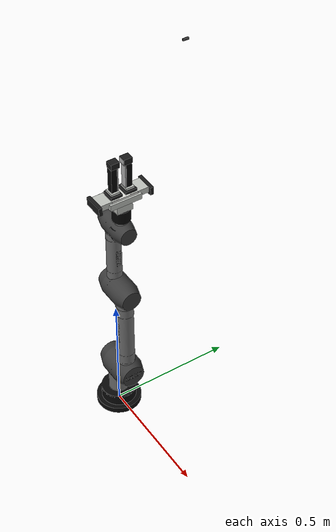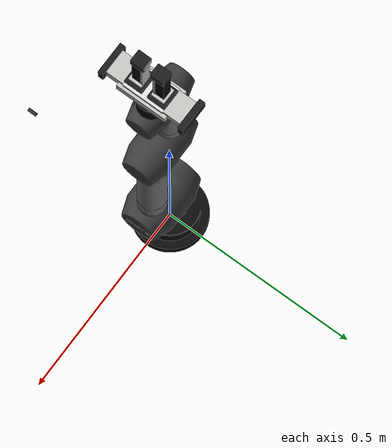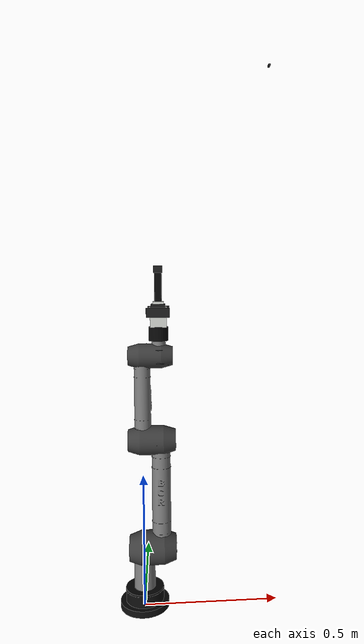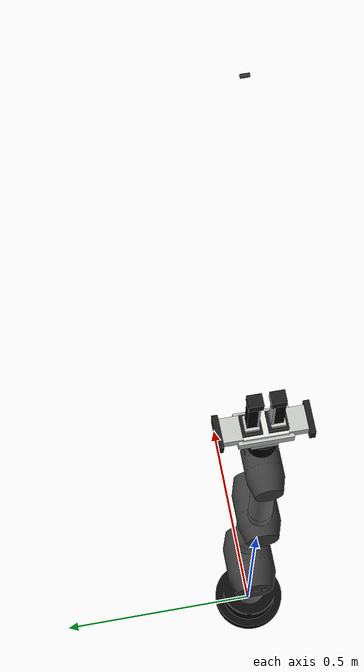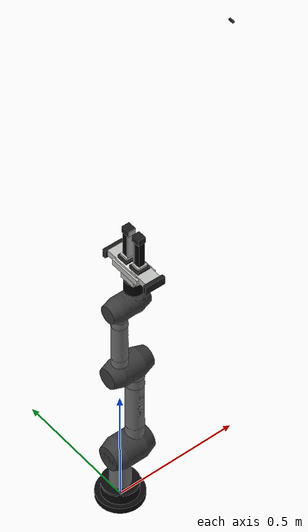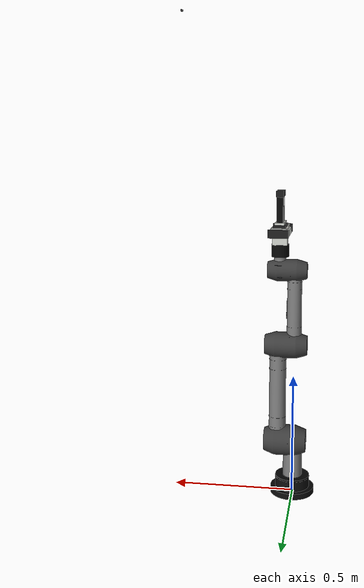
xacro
<?xml version="1.0"?>
<robot xmlns:xacro="http://www.ros.org/wiki/xacro" name="bcr_arm">

  <!-- ================= Arguments ================= -->
  <xacro:arg name="use_gazebo" default="true"/>
  <xacro:arg name="ros2_controllers_path" default="bcr_arm_moveit_config/config/bcr_arm/ros2_controllers.yaml"/>
  <xacro:arg name="use_camera" default="true"/>
  <xacro:arg name="use_gripper" default="true"/>
  <xacro:arg name="prefix" default=""/>

  <!-- ================= Includes ================= -->
  <xacro:include filename="$(find bcr_arm_description)/urdf/mech/bcr_arm_mech.urdf.xacro"/>
  <xacro:include filename="$(find bcr_arm_description)/urdf/sensors/depth_camera.urdf.xacro"/>
  <xacro:include filename="$(find bcr_arm_description)/urdf/control/gazebo_sim_ros2_control.urdf.xacro"/>
  <xacro:include filename="$(find bcr_arm_description)/urdf/control/ros2_control.urdf.xacro"/>
  <xacro:include filename="$(find bcr_arm_description)/urdf/end_effectors/simple_parallel_gripper.urdf.xacro"/>
  <!-- ================= Materials ================= -->
  <material name="black">
    <color rgba="0.165 0.165 0.165 1.0"/>
  </material>

  <material name="dark_grey">
    <color rgba="0.376 0.376 0.376 1.0"/>
  </material>

  <material name="grey">
    <color rgba="0.565 0.565 0.565 1.0"/>
  </material>

  <!-- ================= World Frame ================= -->
  <link name="world"/>

  <joint name="world_to_base" type="fixed">
    <parent link="world"/>
    <child link="base_link"/>
    <origin xyz="0 0 0" rpy="0 0 0"/>
  </joint>

  <!-- ================= Mechanical Arm ================= -->
  <xacro:bcr_arm_kinematics/>

  <!-- ================= End Effector ================= -->

  <xacro:simple_parallel_gripper
    prefix="$(arg prefix)"
    parent_link="flange"
    xyz="0 0 0.055"
    rpy="0 0 0"/>

  <!-- ================= Sensors ================= -->
  <xacro:if value="$(arg use_camera)">
    <xacro:depth_camera
      prefix="$(arg prefix)"
      parent_link="world"
      mount_xyz="0.45 0.00 1.95"
      mount_rpy="0 1.6 0"/>
  </xacro:if>

  <!-- ================= ROS2 Control ================= -->
  <xacro:if value="$(arg use_gazebo)">
    <xacro:load_gazebo_sim_ros2_control_plugin
      robot_name="bcr_arm"
      ros2_controllers_path="$(arg ros2_controllers_path)"
      use_gazebo="$(arg use_gazebo)"/>

    <xacro:ros2_control_interfaces/>
  </xacro:if>

</robot>

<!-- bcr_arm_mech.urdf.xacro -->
<!-- Import Python's math module for use in expressions -->
<?python import math ?>
<robot xmlns:xacro="http://www.ros.org/wiki/xacro">

  <xacro:property name="l1_len" value="0.200" />
  <xacro:property name="l2_offset" value="0.065" />
  <xacro:property name="l3_len" value="0.410" />
  <xacro:property name="l4_offset" value="-0.065" />
  <xacro:property name="l5_len" value="0.310" />
  <xacro:property name="l6_offset" value="0.060" />
  <xacro:property name="l7_len" value="0.105" />

  <!-- RViz Material Definitions -->
  <material name="color_black">
    <color rgba="0.165 0.165 0.165 1"/>
  </material>
  <material name="color_dark_grey">
    <color rgba="0.376 0.376 0.376 1"/>
  </material>
  <material name="color_grey">
    <color rgba="0.565 0.565 0.565 1"/>
  </material>
  <material name="color_light_grey">
    <color rgba="0.690 0.690 0.690 1"/>
  </material>
  <material name="color_white">
    <color rgba="0.961 0.961 0.961 1"/>
  </material>

  <xacro:macro name="bcr_arm_kinematics">

    <!-- Ignition Gazebo Material Definitions -->
    <gazebo reference="base_link">
      <material>
        <ambient>0.165 0.165 0.165 1</ambient>
        <diffuse>0.165 0.165 0.165 1</diffuse>
        <specular>0.1 0.1 0.1 1</specular>
        <emissive>0 0 0 0</emissive>
      </material>
      <mu1>0.8</mu1>
      <mu2>0.8</mu2>
    </gazebo>

    <gazebo reference="link1">
      <material>
        <ambient>0.565 0.565 0.565 1</ambient>
        <diffuse>0.565 0.565 0.565 1</diffuse>
        <specular>0.2 0.2 0.2 1</specular>
        <emissive>0 0 0 0</emissive>
      </material>
      <mu1>0.8</mu1>
      <mu2>0.8</mu2>
    </gazebo>

    <gazebo reference="link2">
      <material>
        <ambient>0.961 0.961 0.961 1</ambient>
        <diffuse>0.961 0.961 0.961 1</diffuse>
        <specular>0.3 0.3 0.3 1</specular>
        <emissive>0 0 0 0</emissive>
      </material>
      <mu1>0.8</mu1>
      <mu2>0.8</mu2>
    </gazebo>

    <gazebo reference="link3">
      <material>
        <ambient>0.565 0.565 0.565 1</ambient>
        <diffuse>0.565 0.565 0.565 1</diffuse>
        <specular>0.2 0.2 0.2 1</specular>
        <emissive>0 0 0 0</emissive>
      </material>
      <mu1>0.8</mu1>
      <mu2>0.8</mu2>
    </gazebo>

    <gazebo reference="link4">
      <material>
        <ambient>0.961 0.961 0.961 1</ambient>
        <diffuse>0.961 0.961 0.961 1</diffuse>
        <specular>0.3 0.3 0.3 1</specular>
        <emissive>0 0 0 0</emissive>
      </material>
      <mu1>0.8</mu1>
      <mu2>0.8</mu2>
    </gazebo>

    <gazebo reference="link5">
      <material>
        <ambient>0.565 0.565 0.565 1</ambient>
        <diffuse>0.565 0.565 0.565 1</diffuse>
        <specular>0.2 0.2 0.2 1</specular>
        <emissive>0 0 0 0</emissive>
      </material>
      <mu1>0.8</mu1>
      <mu2>0.8</mu2>
    </gazebo>

    <gazebo reference="link6">
      <material>
        <ambient>0.961 0.961 0.961 1</ambient>
        <diffuse>0.961 0.961 0.961 1</diffuse>
        <specular>0.3 0.3 0.3 1</specular>
        <emissive>0 0 0 0</emissive>
      </material>
      <mu1>0.8</mu1>
      <mu2>0.8</mu2>
    </gazebo>

    <gazebo reference="flange">
      <material>
        <ambient>0.376 0.376 0.376 1</ambient>
        <diffuse>0.376 0.376 0.376 1</diffuse>
        <specular>0.15 0.15 0.15 1</specular>
        <emissive>0 0 0 0</emissive>
      </material>
      <mu1>0.8</mu1>
      <mu2>0.8</mu2>
    </gazebo>

    <!-- Kinematic Chain -->
    <link name="base_link">
      <visual>
        <geometry>
          <mesh filename="package://bcr_arm_description/meshes/base_joint.dae" scale="0.001 0.001 0.001"/>
        </geometry>
      </visual>
      <collision>
        <origin xyz="0 0 0.050" rpy="0 0 0"/>
        <geometry>
          <cylinder radius="0.070" length="0.050"/>
        </geometry>
      </collision>
      <inertial>
        <mass value="2.0"/>
        <inertia ixx="0.01" ixy="0" ixz="0" iyy="0.01" iyz="0" izz="0.01"/>
      </inertial>
    </link>

    <joint name="joint1" type="revolute">
      <parent link="base_link"/>
      <child link="link1"/>
      <origin xyz="0 0 0.025" rpy="0 0 0"/>
      <axis xyz="0 0 1"/>
      <limit lower="-6.28" upper="6.28" effort="100" velocity="2"/>
    </joint>
    <link name="link1">
      <visual>
        <origin xyz="0 0 0" rpy="0 0 0"/>
        <geometry>
          <mesh filename="package://bcr_arm_description/meshes/joint_shaft_j1.dae" scale="0.001 0.001 0.001"/>
        </geometry>
      </visual>
      <visual>
        <origin xyz="0 0 0" rpy="0 0 0"/>
        <geometry>
          <mesh filename="package://bcr_arm_description/meshes/link_l1.dae" scale="0.001 0.001 0.001"/>
        </geometry>
      </visual>
      <visual>
        <origin xyz="0 0 ${l1_len}" rpy="0 0 0"/>
        <geometry>
          <mesh filename="package://bcr_arm_description/meshes/joint_housing_j2.dae" scale="0.001 0.001 0.001"/>
        </geometry>
      </visual>
      <collision>
        <origin xyz="0 0 ${l1_len/2}" rpy="0 0 0"/>
        <geometry>
          <cylinder radius="0.030" length="${l1_len*0.9}"/>
        </geometry>
      </collision>
      <inertial>
        <mass value="1.5"/>
        <inertia ixx="0.01" ixy="0" ixz="0" iyy="0.01" iyz="0" izz="0.01"/>
      </inertial>
    </link>

    <joint name="joint2" type="revolute">
      <parent link="link1"/>
      <child link="link2"/>
      <origin xyz="0 0 ${l1_len}" rpy="0 0 0"/>
      <axis xyz="1 0 0"/>
      <limit lower="-2.0" upper="2.0" effort="100" velocity="2"/>
    </joint>
    <link name="link2">
      <visual>
        <origin xyz="0 0 0" rpy="0 0 0"/>
        <geometry>
          <mesh filename="package://bcr_arm_description/meshes/joint_output_j2.dae" scale="0.001 0.001 0.001"/>
        </geometry>
      </visual>
      <visual>
        <origin xyz="${l2_offset} 0 0" rpy="0 0 0"/>
        <geometry>
          <mesh filename="package://bcr_arm_description/meshes/joint_housing_j3.dae" scale="0.001 0.001 0.001"/>
        </geometry>
      </visual>
      <collision>
        <origin xyz="${l2_offset/2} 0 0" rpy="0 ${pi/2} 0"/>
        <geometry>
          <cylinder radius="0.030" length="${math.fabs(l2_offset)*1.5}"/>
        </geometry>
      </collision>
      <inertial>
        <mass value="1.5"/>
        <inertia ixx="0.01" ixy="0" ixz="0" iyy="0.01" iyz="0" izz="0.01"/>
      </inertial>
    </link>

    <joint name="joint3" type="revolute">
      <parent link="link2"/>
      <child link="link3"/>
      <origin xyz="${l2_offset} 0 0" rpy="0 0 0"/>
      <axis xyz="0 0 1"/>
      <limit lower="-6.28" upper="6.28" effort="100" velocity="2"/>
    </joint>
    <link name="link3">
      <visual>
        <origin xyz="0 0 0" rpy="0 0 0"/>
        <geometry>
          <mesh filename="package://bcr_arm_description/meshes/joint_shaft_j3.dae" scale="0.001 0.001 0.001"/>
        </geometry>
      </visual>
      <visual>
        <origin xyz="0 0 0" rpy="0 0 0"/>
        <geometry>
          <mesh filename="package://bcr_arm_description/meshes/link_l2.dae" scale="0.001 0.001 0.001"/>
        </geometry>
      </visual>
      <visual>
        <origin xyz="0 0 ${l3_len}" rpy="0 0 0"/>
        <geometry>
          <mesh filename="package://bcr_arm_description/meshes/joint_housing_j4.dae" scale="0.001 0.001 0.001"/>
        </geometry>
      </visual>
      <collision>
        <origin xyz="0 0 ${l3_len/2}" rpy="0 0 0"/>
        <geometry>
          <cylinder radius="0.030" length="${l3_len*0.95}"/>
        </geometry>
      </collision>
      <inertial>
        <mass value="1.2"/>
        <inertia ixx="0.01" ixy="0" ixz="0" iyy="0.01" iyz="0" izz="0.01"/>
      </inertial>
    </link>

    <joint name="joint4" type="revolute">
      <parent link="link3"/>
      <child link="link4"/>
      <origin xyz="0 0 ${l3_len}" rpy="0 0 0"/>
      <axis xyz="1 0 0"/>
      <limit lower="-2.0" upper="2.0" effort="80" velocity="2"/>
    </joint>
    <link name="link4">
      <visual>
        <origin xyz="0 0 0" rpy="0 0 0"/>
        <geometry>
          <mesh filename="package://bcr_arm_description/meshes/joint_output_j4.dae" scale="0.001 0.001 0.001"/>
        </geometry>
      </visual>
      <visual>
        <origin xyz="${l4_offset} 0 0" rpy="0 0 0"/>
        <geometry>
          <mesh filename="package://bcr_arm_description/meshes/joint_housing_j5.dae" scale="0.001 0.001 0.001"/>
        </geometry>
      </visual>
      <collision>
        <origin xyz="${l4_offset/2} 0 0" rpy="0 ${pi/2} 0"/>
        <geometry>
          <cylinder radius="0.030" length="${math.fabs(l4_offset)*1.5}"/>
        </geometry>
      </collision>
      <inertial>
        <mass value="1.0"/>
        <inertia ixx="0.01" ixy="0" ixz="0" iyy="0.01" iyz="0" izz="0.01"/>
      </inertial>
    </link>

    <joint name="joint5" type="revolute">
      <parent link="link4"/>
      <child link="link5"/>
      <origin xyz="${l4_offset} 0 0" rpy="0 0 0"/>
      <axis xyz="0 0 1"/>
      <limit lower="-6.28" upper="6.28" effort="50" velocity="3"/>
    </joint>
    <link name="link5">
      <visual>
        <origin xyz="0 0 0" rpy="0 0 0"/>
        <geometry>
          <mesh filename="package://bcr_arm_description/meshes/joint_shaft_j5.dae" scale="0.001 0.001 0.001"/>
        </geometry>
      </visual>
      <visual>
        <origin xyz="0 0 0" rpy="0 0 0"/>
        <geometry>
          <mesh filename="package://bcr_arm_description/meshes/link_l3.dae" scale="0.001 0.001 0.001"/>
        </geometry>
      </visual>
      <visual>
        <origin xyz="0 0 ${l5_len}" rpy="0 0 0"/>
        <geometry>
          <mesh filename="package://bcr_arm_description/meshes/joint_housing_j6.dae" scale="0.001 0.001 0.001"/>
        </geometry>
      </visual>
      <collision>
        <origin xyz="0 0 ${l5_len/2}" rpy="0 0 0"/>
        <geometry>
          <cylinder radius="0.025" length="${l5_len*0.95}"/>
        </geometry>
      </collision>
      <inertial>
        <mass value="0.8"/>
        <inertia ixx="0.01" ixy="0" ixz="0" iyy="0.01" iyz="0" izz="0.01"/>
      </inertial>
    </link>

    <joint name="joint6" type="revolute">
      <parent link="link5"/>
      <child link="link6"/>
      <origin xyz="0 0 ${l5_len}" rpy="0 0 0"/>
      <axis xyz="1 0 0"/>
      <limit lower="-2.0" upper="2.0" effort="50" velocity="3"/>
    </joint>
    <link name="link6">
      <visual>
        <origin xyz="0 0 0" rpy="0 0 0"/>
        <geometry>
          <mesh filename="package://bcr_arm_description/meshes/joint_output_j6.dae" scale="0.001 0.001 0.001"/>
        </geometry>
      </visual>
      <visual>
        <origin xyz="${l6_offset} 0 0" rpy="0 0 0"/>
        <geometry>
          <mesh filename="package://bcr_arm_description/meshes/joint_housing_j7.dae" scale="0.001 0.001 0.001"/>
        </geometry>
      </visual>
      <collision>
        <origin xyz="${l6_offset/2} 0 0" rpy="0 ${pi/2} 0"/>
        <geometry>
          <cylinder radius="0.030" length="${math.fabs(l6_offset)*1.5}"/>
        </geometry>
      </collision>
      <inertial>
        <mass value="0.5"/>
        <inertia ixx="0.01" ixy="0" ixz="0" iyy="0.01" iyz="0" izz="0.01"/>
      </inertial>
    </link>

    <joint name="joint7" type="revolute">
      <parent link="link6"/>
      <child link="flange"/>
      <origin xyz="${l6_offset} 0 0" rpy="0 0 0"/>
      <axis xyz="0 0 1"/>
      <limit lower="-6.28" upper="6.28" effort="30" velocity="4"/>
    </joint>
    <link name="flange">
      <visual>
        <origin xyz="0 0 0" rpy="0 0 0"/>
        <geometry>
          <mesh filename="package://bcr_arm_description/meshes/joint_shaft_j7.dae" scale="0.001 0.001 0.001"/>
        </geometry>
      </visual>
      <visual>
        <origin xyz="0 0 0" rpy="0 0 0"/>
        <geometry>
          <mesh filename="package://bcr_arm_description/meshes/link_l4.dae" scale="0.001 0.001 0.001"/>
        </geometry>
      </visual>
      <visual>
        <origin xyz="0 0 ${l7_len}" rpy="0 0 0"/>
        <geometry>
          <mesh filename="package://bcr_arm_description/meshes/tool_flange.dae" scale="0.001 0.001 0.001"/>
        </geometry>
      </visual>
      <collision>
        <origin xyz="0 0 ${l7_len/2}" rpy="0 0 0"/>
        <geometry>
          <cylinder radius="0.025" length="${l7_len*0.9}"/>
        </geometry>
      </collision>
      <inertial>
        <mass value="0.3"/>
        <inertia ixx="0.01" ixy="0" ixz="0" iyy="0.01" iyz="0" izz="0.01"/>
      </inertial>
    </link>
  </xacro:macro>
</robot>

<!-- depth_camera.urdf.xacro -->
<robot xmlns:xacro="http://www.ros.org/wiki/xacro">

  <xacro:macro
    name="depth_camera"
    params="prefix parent_link mount_xyz:='0.04 0 0.096125' mount_rpy:='0 0 0' namespace:=bcr_arm">

    <!-- Camera Mount and Link -->
    <joint name="${prefix}camera_mount_joint" type="fixed">
      <parent link="${parent_link}"/>
      <child link="${prefix}camera_base_link"/>
      <origin xyz="${mount_xyz}" rpy="${mount_rpy}"/>
    </joint>

    <link name="${prefix}camera_base_link">
       <visual>
        <geometry>
          <box size="0.00625 0.02 0.00625"/>
        </geometry>
        <material name="black"/>
      </visual>
      <collision>
        <geometry>
          <box size="0.00625 0.02 0.00625"/>
        </geometry>
      </collision>
      <inertial>
        <mass value="0.05"/>
        <inertia ixx="1e-6" ixy="0" ixz="0" iyy="1e-6" iyz="0" izz="1e-6"/>
      </inertial>
    </link>

    <!-- Camera Sensor Link -->
    <joint name="${prefix}camera_joint" type="fixed">
      <parent link="${prefix}camera_base_link"/>
      <child link="${prefix}camera_link"/>
      <!-- Pointing forward from the mount -->
      <origin xyz="0.0125 0 0" rpy="0 0 0"/>
    </joint>

    <link name="${prefix}camera_link"/>

    <!-- Camera Optical Frame -->
    <joint name="${prefix}camera_optical_joint" type="fixed">
      <parent link="${prefix}camera_link"/>
      <child link="${prefix}camera_depth_optical_frame"/>
      <!-- Standard ROS optical frame rotation -->
      <origin xyz="0 0 0" rpy="${-pi/2} 0 ${-pi/2}"/>
    </joint>

    <link name="${prefix}camera_depth_optical_frame"/>

    <!-- Ignition Gazebo RGB-D Camera Plugin -->
    <gazebo reference="${prefix}camera_link">
      <sensor type="rgbd_camera" name="depth_camera">
        <always_on>true</always_on>
        <update_rate>20</update_rate>
        <visualize>true</visualize>
        <camera>
          <horizontal_fov>1.0</horizontal_fov>
          <image>
            <width>640</width>
            <height>480</height>
            <format>R8G8B8</format>
          </image>
          <depth_image>
            <width>640</width>
            <height>480</height>
          </depth_image>
          <clip>
            <near>0.1</near>
            <far>10.0</far>
          </clip>
        </camera>
        <!-- Sensor data handled by Gazebo sensors system and bridged by ros_gz_bridge -->
      </sensor>
    </gazebo>
  </xacro:macro>
</robot>

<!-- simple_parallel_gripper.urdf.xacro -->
<robot xmlns:xacro="http://www.ros.org/wiki/xacro">

  <!-- ================= Materials ================= -->

  <material name="simple_gripper_black">
    <color rgba="0.02 0.02 0.02 1.0"/>
  </material>

  <material name="simple_gripper_dark">
    <color rgba="0.10 0.10 0.10 1.0"/>
  </material>

  <material name="simple_gripper_gray">
    <color rgba="0.70 0.70 0.70 1.0"/>
  </material>

  <material name="simple_gripper_silver">
    <color rgba="0.75 0.76 0.74 1.0"/>
  </material>

  <material name="simple_gripper_light_silver">
    <color rgba="0.88 0.88 0.86 1.0"/>
  </material>

  <material name="simple_gripper_blue">
    <color rgba="0.10 0.25 0.80 1.0"/>
  </material>

  <!-- ================= Inertial helper ================= -->

  <xacro:macro name="simple_box_inertial" params="mass x y z">
    <inertial>
      <mass value="${mass}"/>
      <origin xyz="0 0 0" rpy="0 0 0"/>
      <inertia
        ixx="${mass * (y*y + z*z) / 12.0}"
        ixy="0.0"
        ixz="0.0"
        iyy="${mass * (x*x + z*z) / 12.0}"
        iyz="0.0"
        izz="${mass * (x*x + y*y) / 12.0}"/>
    </inertial>
  </xacro:macro>

  <!-- ================= Main gripper macro ================= -->

  <xacro:macro name="simple_parallel_gripper" params="prefix parent_link xyz rpy">

    <!-- Mount joint: flange -> simple_gripper_base_link            -->

    <joint name="${prefix}simple_gripper_mount_joint" type="fixed">
      <parent link="${parent_link}"/>
      <child link="${prefix}simple_gripper_base_link"/>
      <origin xyz="${xyz}" rpy="${rpy}"/>
    </joint>

    <!-- Gripper base link                                         -->
    <!-- Includes: round mount, central housing, upper sliding rail -->

    <link name="${prefix}simple_gripper_base_link">
      <xacro:simple_box_inertial mass="0.30" x="0.080" y="0.130" z="0.130"/>

      <!-- Lower round mount body: keep black -->
      <visual>
        <origin xyz="0 0 0.025" rpy="0 0 0"/>
        <geometry>
          <cylinder radius="0.035" length="0.050"/>
        </geometry>
        <material name="simple_gripper_black"/>
      </visual>

      <!-- Blue top cap on round mount -->
      <visual>
        <origin xyz="0 0 0.055" rpy="0 0 0"/>
        <geometry>
          <cylinder radius="0.024" length="0.014"/>
        </geometry>
        <material name="simple_gripper_blue"/>
      </visual>

      <!-- Silver central housing: connects lower base to upper rail -->
      <visual>
        <origin xyz="0 0 0.075" rpy="0 0 0"/>
        <geometry>
          <box size="0.058 0.064 0.052"/>
        </geometry>
        <material name="simple_gripper_silver"/>
      </visual>

      <!-- Small dark front cover on central housing -->
      <visual>
        <origin xyz="0.002 0 0.075" rpy="0 0 0"/>
        <geometry>
          <box size="0.040 0.040 0.030"/>
        </geometry>
        <material name="simple_gripper_dark"/>
      </visual>

      <!-- Main upper sliding rail: changed from black to silver -->
      <visual>
        <origin xyz="0 0 0.100" rpy="0 0 0"/>
        <geometry>
          <box size="0.078 0.128 0.024"/>
        </geometry>
        <material name="simple_gripper_silver"/>
      </visual>

      <!-- Light silver top cover on sliding rail -->
      <visual>
        <origin xyz="0 0 0.116" rpy="0 0 0"/>
        <geometry>
          <box size="0.064 0.105 0.008"/>
        </geometry>
        <material name="simple_gripper_light_silver"/>
      </visual>

      <!-- Left fixed support platform under moving finger: silver -->
      <visual>
        <origin xyz="0 0.060 0.108" rpy="0 0 0"/>
        <geometry>
          <box size="0.060 0.075 0.024"/>
        </geometry>
        <material name="simple_gripper_silver"/>
      </visual>

      <!-- Right fixed support platform under moving finger: silver -->
      <visual>
        <origin xyz="0 -0.060 0.108" rpy="0 0 0"/>
        <geometry>
          <box size="0.060 0.075 0.024"/>
        </geometry>
        <material name="simple_gripper_silver"/>
      </visual>

      <!-- Small dark left end cap on rail -->
      <visual>
        <origin xyz="0 0.105 0.104" rpy="0 0 0"/>
        <geometry>
          <box size="0.080 0.014 0.032"/>
        </geometry>
        <material name="simple_gripper_dark"/>
      </visual>

      <!-- Small dark right end cap on rail -->
      <visual>
        <origin xyz="0 -0.105 0.104" rpy="0 0 0"/>
        <geometry>
          <box size="0.080 0.014 0.032"/>
        </geometry>
        <material name="simple_gripper_dark"/>
      </visual>

      <!-- Base collision -->
      <collision>
        <origin xyz="0 0 0.040" rpy="0 0 0"/>
        <geometry>
          <box size="0.075 0.090 0.080"/>
        </geometry>
      </collision>

      <!-- Central housing collision -->
      <collision>
        <origin xyz="0 0 0.075" rpy="0 0 0"/>
        <geometry>
          <box size="0.060 0.066 0.055"/>
        </geometry>
      </collision>

      <!-- Rail collision -->
      <collision>
        <origin xyz="0 0 0.100" rpy="0 0 0"/>
        <geometry>
          <box size="0.078 0.128 0.024"/>
        </geometry>
      </collision>
    </link>

    <!-- Left finger joint and link                                -->
    <!-- Positive position moves left finger outward along +Y       -->

    <joint name="${prefix}simple_left_finger_joint" type="prismatic">
      <parent link="${prefix}simple_gripper_base_link"/>
      <child link="${prefix}simple_left_finger_link"/>

      <!-- Finger sits on the upper sliding rail -->
      <origin xyz="0 0.030 0.110" rpy="0 0 0"/>

      <axis xyz="0 1 0"/>

      <limit lower="0.0" upper="0.045" effort="100.0" velocity="0.10"/>
      <dynamics damping="4.0" friction="0.8"/>
    </joint>

    <link name="${prefix}simple_left_finger_link">
      <xacro:simple_box_inertial mass="0.075" x="0.026" y="0.028" z="0.145"/>

      <!-- Moving slider block on rail: keep dark -->
      <visual>
        <origin xyz="0 0 0.010" rpy="0 0 0"/>
        <geometry>
          <box size="0.050 0.046 0.022"/>
        </geometry>
        <material name="simple_gripper_dark"/>
      </visual>

      <!-- Small silver slider cover -->
      <visual>
        <origin xyz="0 0 0.025" rpy="0 0 0"/>
        <geometry>
          <box size="0.038 0.034 0.010"/>
        </geometry>
        <material name="simple_gripper_silver"/>
      </visual>

      <!-- Vertical finger body: keep black -->
      <visual>
        <origin xyz="0 0 0.075" rpy="0 0 0"/>
        <geometry>
          <box size="0.024 0.024 0.130"/>
        </geometry>
        <material name="simple_gripper_black"/>
      </visual>

      <!-- Inner gray gripping pad -->
      <visual>
        <origin xyz="0 -0.0135 0.078" rpy="0 0 0"/>
        <geometry>
          <box size="0.026 0.005 0.095"/>
        </geometry>
        <material name="simple_gripper_gray"/>
      </visual>

      <!-- Larger fingertip block -->
      <visual>
        <origin xyz="0 -0.004 0.142" rpy="0 0 0"/>
        <geometry>
          <box size="0.030 0.034 0.024"/>
        </geometry>
        <material name="simple_gripper_dark"/>
      </visual>

      <!-- Gray fingertip contact pad -->
      <visual>
        <origin xyz="0 -0.020 0.142" rpy="0 0 0"/>
        <geometry>
          <box size="0.028 0.004 0.020"/>
        </geometry>
        <material name="simple_gripper_gray"/>
      </visual>

      <!-- Stable collision -->
      <collision>
        <origin xyz="0 -0.002 0.075" rpy="0 0 0"/>
        <geometry>
          <box size="0.026 0.028 0.145"/>
        </geometry>
      </collision>
    </link>

    <!-- Right finger joint and link                               -->
    <!-- Positive position moves right finger outward along -Y      -->

    <joint name="${prefix}simple_right_finger_joint" type="prismatic">
      <parent link="${prefix}simple_gripper_base_link"/>
      <child link="${prefix}simple_right_finger_link"/>

      <!-- Finger sits on the upper sliding rail -->
      <origin xyz="0 -0.030 0.110" rpy="0 0 0"/>

      <axis xyz="0 -1 0"/>

      <limit lower="0.0" upper="0.045" effort="100.0" velocity="0.10"/>
      <dynamics damping="4.0" friction="0.8"/>
    </joint>

    <link name="${prefix}simple_right_finger_link">
      <xacro:simple_box_inertial mass="0.075" x="0.026" y="0.028" z="0.145"/>

      <!-- Moving slider block on rail: keep dark -->
      <visual>
        <origin xyz="0 0 0.010" rpy="0 0 0"/>
        <geometry>
          <box size="0.050 0.046 0.022"/>
        </geometry>
        <material name="simple_gripper_dark"/>
      </visual>

      <!-- Small silver slider cover -->
      <visual>
        <origin xyz="0 0 0.025" rpy="0 0 0"/>
        <geometry>
          <box size="0.038 0.034 0.010"/>
        </geometry>
        <material name="simple_gripper_silver"/>
      </visual>

      <!-- Vertical finger body: keep black -->
      <visual>
        <origin xyz="0 0 0.075" rpy="0 0 0"/>
        <geometry>
          <box size="0.024 0.024 0.130"/>
        </geometry>
        <material name="simple_gripper_black"/>
      </visual>

      <!-- Inner gray gripping pad -->
      <visual>
        <origin xyz="0 0.0135 0.078" rpy="0 0 0"/>
        <geometry>
          <box size="0.026 0.005 0.095"/>
        </geometry>
        <material name="simple_gripper_gray"/>
      </visual>

      <!-- Larger fingertip block -->
      <visual>
        <origin xyz="0 0.004 0.142" rpy="0 0 0"/>
        <geometry>
          <box size="0.030 0.034 0.024"/>
        </geometry>
        <material name="simple_gripper_dark"/>
      </visual>

      <!-- Gray fingertip contact pad -->
      <visual>
        <origin xyz="0 0.020 0.142" rpy="0 0 0"/>
        <geometry>
          <box size="0.028 0.004 0.020"/>
        </geometry>
        <material name="simple_gripper_gray"/>
      </visual>

      <!-- Stable collision -->
      <collision>
        <origin xyz="0 0.002 0.075" rpy="0 0 0"/>
        <geometry>
          <box size="0.026 0.028 0.145"/>
        </geometry>
      </collision>
    </link>

    <!-- Gazebo physics hints                                      -->

    <gazebo reference="${prefix}simple_gripper_base_link">
      <selfCollide>false</selfCollide>
    </gazebo>

    <gazebo reference="${prefix}simple_left_finger_link">
      <selfCollide>false</selfCollide>
      <mu1>1.8</mu1>
      <mu2>1.8</mu2>
    </gazebo>

    <gazebo reference="${prefix}simple_right_finger_link">
      <selfCollide>false</selfCollide>
      <mu1>1.8</mu1>
      <mu2>1.8</mu2>
    </gazebo>

  </xacro:macro>

</robot>
